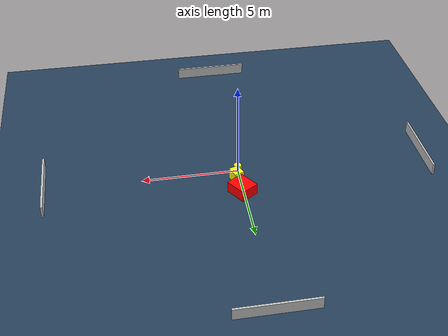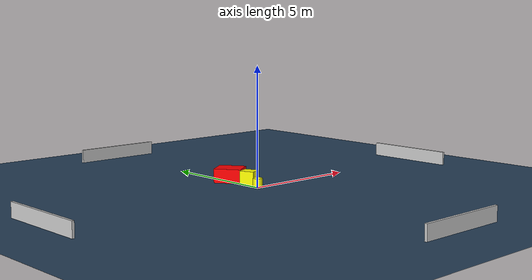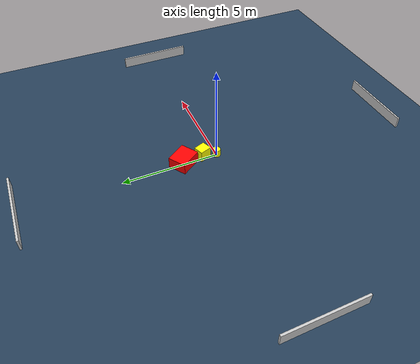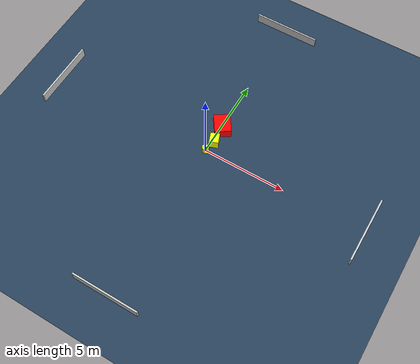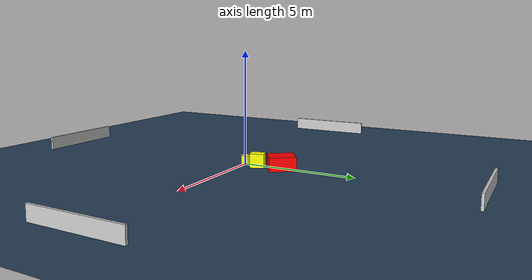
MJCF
<?xml version="1.0" ?>
<mujoco model="generated_environment">
  <option timestep="0.01" integrator="RK4" cone="elliptic"/>
  <default>
    <geom density="1"/>
  </default>
  <asset>
    <texture builtin="gradient" height="3072" name="skybox" rgb1="0.3 0.5 0.7" rgb2="0 0 0" type="skybox" width="512"/>
    <texture builtin="checker" height="300" name="groundplane" rgb1="0.2 0.3 0.4" rgb2="0.1 0.2 0.3" type="2d" width="300"/>
    <material name="groundplane" reflectance="0.2" texrepeat="5 5" texture="groundplane"/>
  </asset>
  <worldbody>
    <light dir="0 0 -1" directional="true" pos="0 0 1.5"/>
    <geom condim="3" friction="0.5 0.005 0.001" material="groundplane" name="floor" pos="0 0 0" size="0 0 0.05" type="plane"/>
    <body name="walls">
      <geom name="wall_1" condim="4" pos="-10.0 0.0 0.3" rgba="0.800000011920929 0.800000011920929 0.800000011920929 1.0" size="0.05 2.0 0.3" type="box"/>
      <geom name="wall_2" condim="4" pos="10.0 0.0 0.3" rgba="0.800000011920929 0.800000011920929 0.800000011920929 1.0" size="0.05 2.0 0.3" type="box"/>
      <geom name="wall_3" condim="4" pos="0.0 -10.0 0.3" rgba="0.800000011920929 0.800000011920929 0.800000011920929 1.0" size="2.0 0.05 0.3" type="box"/>
      <geom name="wall_4" condim="4" pos="0.0 10.0 0.3" rgba="0.800000011920929 0.800000011920929 0.800000011920929 1.0" size="2.0 0.05 0.3" type="box"/>
    </body>
    <body name="robot">
      <joint name="joint_x" type="slide" pos="0 0 0" axis="1 0 0"/>
      <joint name="joint_y" type="slide" pos="0 0 0" axis="0 1 0"/>
      <geom name="robot" type="cylinder" pos="0.0 0.0 0.2" size="0.2 0.2 0.0" mass="5.0" friction="1.0 0.005 0.0001" condim="4" rgba="1.0 1.0 0.0 1.0"/>
    </body>
    <body name="obstacle_1_movable">
      <geom name="obstacle_1_movable" condim="4" pos="0.1777348396941067 0.7018751024583658 0.3" euler="0 0 290.0582216945463" friction="0.0 0.005 0.001" rgba="1.0 1.0 0.0 1.0" size="0.3104035896916192 0.2678459399258117 0.3" type="box" mass="0.1"/>
      <joint type="free"/>
    </body>
    <body name="obstacle_2_static">
      <geom name="obstacle_2_static" condim="4" pos="0.06996319394028003 1.7921732719296246 0.3" euler="0 0 123.61706602341539" friction="0.0 0.005 0.001" rgba="1.0 0.0 0.0 1.0" size="0.5755807692814754 0.48655129740468556 0.3" type="box"/>
    </body>
  </worldbody>
  <actuator>
    <motor name="actuator_x" joint="joint_x" gear="1" ctrlrange="-1 1"/>
    <motor name="actuator_y" joint="joint_y" gear="1" ctrlrange="-1 1"/>
  </actuator>
</mujoco>
